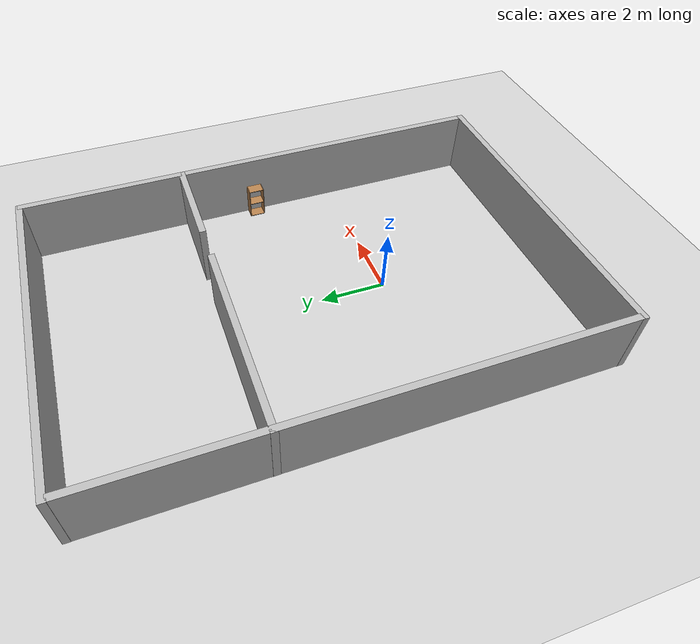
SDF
<sdf version="1.6">
 <world name="default">
  <physics name="default_physics" default="0" type="ode">
   <ode>
    <solver>
     <type>quick</type>
     <iters>20</iters>
     <sor>1</sor>
     <use_dynamic_moi_rescaling>0</use_dynamic_moi_rescaling>
    </solver>
    <constraints>
     <cfm>0</cfm>
     <erp>0.2</erp>
     <contact_max_correcting_vel>100</contact_max_correcting_vel>
     <contact_surface_layer>0</contact_surface_layer>
    </constraints>
   </ode>
   <real_time_update_rate>1000</real_time_update_rate>
   <max_step_size>0.001</max_step_size>
   <real_time_factor>1</real_time_factor>
  </physics>
  <light name="sun" type="directional">
   <pose>0 0 10 0 -0 0</pose>
   <diffuse>0.8 0.8 0.8 1</diffuse>
   <specular>0.2 0.2 0.2 1</specular>
   <attenuation>
    <range>1000</range>
    <constant>0.9</constant>
    <linear>0.01</linear>
    <quadratic>0.001</quadratic>
   </attenuation>
   <direction>-0.5 0.1 -0.9</direction>
  </light>
  <model name="ground_plane">
   <static>1</static>
   <link name="link">
    <collision name="collision">
     <geometry><plane><normal>0 0 1</normal><size>100 100</size></plane></geometry>
     <surface>
      <contact><collide_bitmask>65535</collide_bitmask></contact>
      <friction><ode><mu>100</mu><mu2>50</mu2></ode></friction>
     </surface>
    </collision>
    <visual name="visual">
     <cast_shadows>0</cast_shadows>
     <geometry><plane><normal>0 0 1</normal><size>100 100</size></plane></geometry>
     <material>
      <script><uri>file://media/materials/scripts/gazebo.material</uri><name>Gazebo/Grey</name></script>
     </material>
    </visual>
   </link>
  </model>
  <model name="wall_1_model">
   <pose>-0.000748 -4.98873 1 0 -0 0</pose>
   <static>1</static>
   <link name="wall_1_body">
    <inertial>
     <mass>1</mass>
     <inertia><ixx>1</ixx><ixy>0</ixy><ixz>0</ixz><iyy>1</iyy><iyz>0</iyz><izz>1</izz></inertia>
    </inertial>
    <collision name="collision"><geometry><box><size>10 0.2 2</size></box></geometry></collision>
    <visual name="visual"><geometry><box><size>10 0.2 2</size></box></geometry></visual>
   </link>
  </model>
  <model name="wall_2_model">
   <pose>0 10 1 0 -0 0</pose>
   <static>1</static>
   <link name="wall_2_body">
    <inertial>
     <mass>1</mass>
     <inertia><ixx>1</ixx><ixy>0</ixy><ixz>0</ixz><iyy>1</iyy><iyz>0</iyz><izz>1</izz></inertia>
    </inertial>
    <collision name="collision"><geometry><box><size>10 0.2 2</size></box></geometry></collision>
    <visual name="visual"><geometry><box><size>10 0.2 2</size></box></geometry></visual>
   </link>
  </model>
  <model name="wall_3_model">
   <pose>-4.89523 2.44191 1 0 -0 0</pose>
   <static>1</static>
   <link name="wall_3_body">
    <inertial>
     <mass>1</mass>
     <inertia><ixx>1</ixx><ixy>0</ixy><ixz>0</ixz><iyy>1</iyy><iyz>0</iyz><izz>1</izz></inertia>
    </inertial>
    <collision name="collision"><geometry><box><size>0.2 15 2</size></box></geometry></collision>
    <visual name="visual"><geometry><box><size>0.2 15 2</size></box></geometry></visual>
   </link>
  </model>
  <model name="wall_4_model">
   <pose>4.90632 2.5518 1 0 -0 0</pose>
   <static>1</static>
   <link name="wall_4_body">
    <inertial>
     <mass>1</mass>
     <inertia><ixx>1</ixx><ixy>0</ixy><ixz>0</ixz><iyy>1</iyy><iyz>0</iyz><izz>1</izz></inertia>
    </inertial>
    <collision name="collision"><geometry><box><size>0.2 15 2</size></box></geometry></collision>
    <visual name="visual"><geometry><box><size>0.2 15 2</size></box></geometry></visual>
   </link>
  </model>
  <model name="wall_5_model">
   <pose>-2 5 1 0 -0 0</pose>
   <static>1</static>
   <link name="wall_5_body">
    <inertial>
     <mass>1</mass>
     <inertia><ixx>1</ixx><ixy>0</ixy><ixz>0</ixz><iyy>1</iyy><iyz>0</iyz><izz>1</izz></inertia>
    </inertial>
    <collision name="collision"><geometry><box><size>6 0.2 2</size></box></geometry></collision>
    <visual name="visual"><geometry><box><size>6 0.2 2</size></box></geometry></visual>
   </link>
  </model>
  <model name="wall_6_model">
   <pose>3.5 5 1 0 -0 0</pose>
   <static>1</static>
   <link name="wall_6_body">
    <inertial>
     <mass>1</mass>
     <inertia><ixx>1</ixx><ixy>0</ixy><ixz>0</ixz><iyy>1</iyy><iyz>0</iyz><izz>1</izz></inertia>
    </inertial>
    <collision name="collision"><geometry><box><size>3 0.2 2</size></box></geometry></collision>
    <visual name="visual"><geometry><box><size>3 0.2 2</size></box></geometry></visual>
   </link>
  </model>
  <light name="male03light" type="point">
   <pose>3.6 0.53 1.6 0 -0 0</pose>
   <diffuse>0.5 0.5 0.5 1</diffuse>
   <specular>0.1 0.1 0.1 1</specular>
   <attenuation>
    <range>1</range>
    <linear>0.01</linear>
    <constant>0.3</constant>
    <quadratic>0</quadratic>
   </attenuation>
   <direction>0 0 -1</direction>
   <spot><inner_angle>0.6</inner_angle><outer_angle>0.8</outer_angle><falloff>1.2</falloff></spot>
   <cast_shadows>0</cast_shadows>
  </light>
  <light name="female02light" type="point">
   <pose>-2.5 -2.63 1.5 0 -0 0</pose>
   <diffuse>0.5 0.5 0.5 1</diffuse>
   <specular>0.1 0.1 0.1 1</specular>
   <attenuation>
    <range>1</range>
    <linear>0.01</linear>
    <constant>0.3</constant>
    <quadratic>0</quadratic>
   </attenuation>
   <direction>0 0 -1</direction>
   <spot><inner_angle>0.6</inner_angle><outer_angle>0.8</outer_angle><falloff>1.2</falloff></spot>
   <cast_shadows>0</cast_shadows>
  </light>
  <light name="female03light" type="point">
   <pose>-3 6.2 1.5 0 -0 0</pose>
   <diffuse>0.5 0.5 0.5 1</diffuse>
   <specular>0.1 0.1 0.1 1</specular>
   <attenuation>
    <range>1</range>
    <linear>0.01</linear>
    <constant>0.3</constant>
    <quadratic>0</quadratic>
   </attenuation>
   <direction>0 0 -1</direction>
   <spot><inner_angle>0.6</inner_angle><outer_angle>0.8</outer_angle><falloff>1.2</falloff></spot>
   <cast_shadows>0</cast_shadows>
  </light>
  <light name="female02bislight" type="point">
   <pose>3.8 6.7 1.5 0 -0 0</pose>
   <diffuse>0.5 0.5 0.5 1</diffuse>
   <specular>0.1 0.1 0.1 1</specular>
   <attenuation>
    <range>1</range>
    <linear>0.01</linear>
    <constant>0.3</constant>
    <quadratic>0</quadratic>
   </attenuation>
   <direction>0 0 -1</direction>
   <spot><inner_angle>0.6</inner_angle><outer_angle>0.8</outer_angle><falloff>1.2</falloff></spot>
   <cast_shadows>0</cast_shadows>
  </light>
  <light name="male03bislight" type="point">
   <pose>-2.9 3.7 1.5 0 -0 0</pose>
   <diffuse>0.5 0.5 0.5 1</diffuse>
   <specular>0.1 0.1 0.1 1</specular>
   <attenuation>
    <range>1</range>
    <linear>0.01</linear>
    <constant>0.3</constant>
    <quadratic>0</quadratic>
   </attenuation>
   <direction>0 0 -1</direction>
   <spot><inner_angle>0.6</inner_angle><outer_angle>0.8</outer_angle><falloff>1.2</falloff></spot>
   <cast_shadows>0</cast_shadows>
  </light>
  <gravity>0 0 -9.81</gravity>
  <magnetic_field>6e-06 2.3e-05 -4.2e-05</magnetic_field>
  <atmosphere type="adiabatic"/>
  <scene><ambient>0.4 0.4 0.4 1</ambient><background>0.7 0.7 0.7 1</background><shadows>1</shadows></scene>
  <spherical_coordinates>
   <surface_model>EARTH_WGS84</surface_model>
   <latitude_deg>0</latitude_deg>
   <longitude_deg>0</longitude_deg>
   <elevation>0</elevation>
   <heading_deg>0</heading_deg>
  </spherical_coordinates>
  <model name="cabinet">
   <static>1</static>
   <link name="cabinet_bottom_plate">
    <inertial>
     <pose>0 0 -1 0 -0 0</pose>
     <inertia><ixx>2.05</ixx><ixy>0</ixy><ixz>0</ixz><iyy>2.05</iyy><iyz>0</iyz><izz>2.05</izz></inertia>
     <mass>25</mass>
    </inertial>
    <collision name="cabinet_bottom_plate_geom">
     <pose>0 0 0.01 0 -0 0</pose>
     <geometry><box><size>0.45 0.45 0.02</size></box></geometry>
    </collision>
    <visual name="cabinet_bottom_plate_geom_visual">
     <pose>0 0 0.01 0 -0 0</pose>
     <geometry><box><size>0.45 0.45 0.02</size></box></geometry>
     <material>
      <script><uri>file://media/materials/scripts/gazebo.material</uri><name>Gazebo/Wood</name></script>
     </material>
    </visual>
    <collision name="cabinet_bottom_plate_geom_cabinet_back_plate">
     <pose>0.235 0 0.51 0 -0 0</pose>
     <geometry><box><size>0.02 0.45 1.02</size></box></geometry>
    </collision>
    <visual name="cabinet_bottom_plate_geom_cabinet_back_plate_visual">
     <pose>0.235 0 0.51 0 -0 0</pose>
     <geometry><box><size>0.02 0.45 1.02</size></box></geometry>
     <material>
      <script><uri>file://media/materials/scripts/gazebo.material</uri><name>Gazebo/Wood</name></script>
     </material>
    </visual>
    <collision name="cabinet_bottom_plate_geom_cabinet_left_plate">
     <pose>0 0.235 0.51 0 -0 0</pose>
     <geometry><box><size>0.45 0.02 1.02</size></box></geometry>
    </collision>
    <visual name="cabinet_bottom_plate_geom_cabinet_left_plate_visual">
     <pose>0 0.235 0.51 0 -0 0</pose>
     <geometry><box><size>0.45 0.02 1.02</size></box></geometry>
     <material>
      <script><uri>file://media/materials/scripts/gazebo.material</uri><name>Gazebo/Wood</name></script>
     </material>
    </visual>
    <collision name="cabinet_bottom_plate_geom_cabinet_middle_plate">
     <pose>0 0 0.51 0 -0 0</pose>
     <geometry><box><size>0.45 0.45 0.02</size></box></geometry>
    </collision>
    <visual name="cabinet_bottom_plate_geom_cabinet_middle_plate_visual">
     <pose>0 0 0.51 0 -0 0</pose>
     <geometry><box><size>0.45 0.45 0.02</size></box></geometry>
     <material>
      <script><uri>file://media/materials/scripts/gazebo.material</uri><name>Gazebo/Wood</name></script>
     </material>
    </visual>
    <collision name="cabinet_bottom_plate_geom_cabinet_right_plate">
     <pose>0 -0.235 0.51 0 -0 0</pose>
     <geometry><box><size>0.45 0.02 1.02</size></box></geometry>
    </collision>
    <visual name="cabinet_bottom_plate_geom_cabinet_right_plate_visual">
     <pose>0 -0.235 0.51 0 -0 0</pose>
     <geometry><box><size>0.45 0.02 1.02</size></box></geometry>
     <material>
      <script><uri>file://media/materials/scripts/gazebo.material</uri><name>Gazebo/Wood</name></script>
     </material>
    </visual>
    <collision name="cabinet_bottom_plate_geom_cabinet_top_plate">
     <pose>0 0 1.01 0 -0 0</pose>
     <geometry><box><size>0.45 0.45 0.02</size></box></geometry>
    </collision>
    <visual name="cabinet_bottom_plate_geom_cabinet_top_plate_visual">
     <pose>0 0 1.01 0 -0 0</pose>
     <geometry><box><size>0.45 0.45 0.02</size></box></geometry>
     <material>
      <script><uri>file://media/materials/scripts/gazebo.material</uri><name>Gazebo/Wood</name></script>
     </material>
    </visual>
   </link>
   <pose>4.68975 2.70343 0 0 -0 0</pose>
  </model>
 </world>
</sdf>
